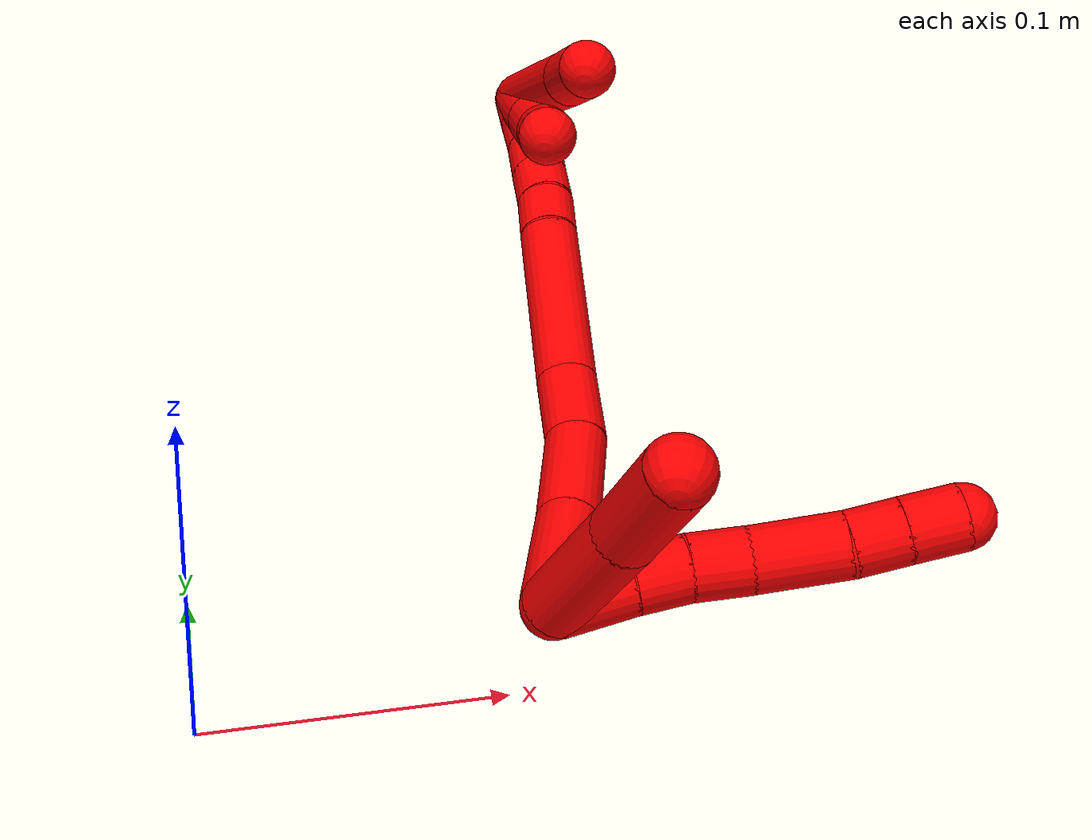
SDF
<sdf version="1.7">
 <world name="default">
  <model name="2">
   <static>0</static>
   <link name="2">
    <collision name="collision-cylinder-e_1_2_8">
     <pose>0.005618 -0.012443 0.004761 1.20536 0.399059 0.276511</pose>
     <geometry><cylinder><radius>0.0125</radius><length>0.028917</length></cylinder></geometry>
     <surface>
      <friction><ode><mu>1.16</mu><mu2>1.16</mu2><slip1>0</slip1><slip2>0</slip2></ode></friction>
      <contact><ode><kp>1e+06</kp><kd>1</kd><max_vel>0</max_vel><min_depth>0.001</min_depth></ode></contact>
     </surface>
    </collision>
    <visual name="visual-cylinder-e_1_2_8">
     <pose>0.005618 -0.012443 0.004761 1.20536 0.399059 0.276511</pose>
     <geometry><cylinder><radius>0.0125</radius><length>0.028917</length></cylinder></geometry>
     <material><ambient>1 0 0 1</ambient></material>
    </visual>
    <collision name="collision-cylinder-e_2_8_9">
     <pose>0.015943 -0.033333 0.012836 1.19691 0.478528 0.329649</pose>
     <geometry><cylinder><radius>0.0125</radius><length>0.020445</length></cylinder></geometry>
     <surface>
      <friction><ode><mu>1.16</mu><mu2>1.16</mu2><slip1>0</slip1><slip2>0</slip2></ode></friction>
      <contact><ode><kp>1e+06</kp><kd>1</kd><max_vel>0</max_vel><min_depth>0.001</min_depth></ode></contact>
     </surface>
    </collision>
    <visual name="visual-cylinder-e_2_8_9">
     <pose>0.015943 -0.033333 0.012836 1.19691 0.478528 0.329649</pose>
     <geometry><cylinder><radius>0.0125</radius><length>0.020445</length></cylinder></geometry>
     <material><ambient>1 0 0 1</ambient></material>
    </visual>
    <collision name="collision-cylinder-e_3_9_10">
     <pose>0.026694 -0.051133 0.018937 1.2812 0.554517 0.41811</pose>
     <geometry><cylinder><radius>0.0125</radius><length>0.022956</length></cylinder></geometry>
     <surface>
      <friction><ode><mu>1.16</mu><mu2>1.16</mu2><slip1>0</slip1><slip2>0</slip2></ode></friction>
      <contact><ode><kp>1e+06</kp><kd>1</kd><max_vel>0</max_vel><min_depth>0.001</min_depth></ode></contact>
     </surface>
    </collision>
    <visual name="visual-cylinder-e_3_9_10">
     <pose>0.026694 -0.051133 0.018937 1.2812 0.554517 0.41811</pose>
     <geometry><cylinder><radius>0.0125</radius><length>0.022956</length></cylinder></geometry>
     <material><ambient>1 0 0 1</ambient></material>
    </visual>
    <collision name="collision-cylinder-e_4_10_11">
     <pose>0.039818 -0.076745 0.024153 1.42248 0.406664 0.351657</pose>
     <geometry><cylinder><radius>0.0125</radius><length>0.035803</length></cylinder></geometry>
     <surface>
      <friction><ode><mu>1.16</mu><mu2>1.16</mu2><slip1>0</slip1><slip2>0</slip2></ode></friction>
      <contact><ode><kp>1e+06</kp><kd>1</kd><max_vel>0</max_vel><min_depth>0.001</min_depth></ode></contact>
     </surface>
    </collision>
    <visual name="visual-cylinder-e_4_10_11">
     <pose>0.039818 -0.076745 0.024153 1.42248 0.406664 0.351657</pose>
     <geometry><cylinder><radius>0.0125</radius><length>0.035803</length></cylinder></geometry>
     <material><ambient>1 0 0 1</ambient></material>
    </visual>
    <collision name="collision-cylinder-e_5_11_12">
     <pose>0.050706 -0.102026 0.029084 1.3003 0.386291 0.295294</pose>
     <geometry><cylinder><radius>0.0125</radius><length>0.020208</length></cylinder></geometry>
     <surface>
      <friction><ode><mu>1.16</mu><mu2>1.16</mu2><slip1>0</slip1><slip2>0</slip2></ode></friction>
      <contact><ode><kp>1e+06</kp><kd>1</kd><max_vel>0</max_vel><min_depth>0.001</min_depth></ode></contact>
     </surface>
    </collision>
    <visual name="visual-cylinder-e_5_11_12">
     <pose>0.050706 -0.102026 0.029084 1.3003 0.386291 0.295294</pose>
     <geometry><cylinder><radius>0.0125</radius><length>0.020208</length></cylinder></geometry>
     <material><ambient>1 0 0 1</ambient></material>
    </visual>
    <collision name="collision-cylinder-e_6_12_6">
     <pose>0.058714 -0.120684 0.034199 1.30598 0.398185 0.306256</pose>
     <geometry><cylinder><radius>0.0125</radius><length>0.02167</length></cylinder></geometry>
     <surface>
      <friction><ode><mu>1.16</mu><mu2>1.16</mu2><slip1>0</slip1><slip2>0</slip2></ode></friction>
      <contact><ode><kp>1e+06</kp><kd>1</kd><max_vel>0</max_vel><min_depth>0.001</min_depth></ode></contact>
     </surface>
    </collision>
    <visual name="visual-cylinder-e_6_12_6">
     <pose>0.058714 -0.120684 0.034199 1.30598 0.398185 0.306256</pose>
     <geometry><cylinder><radius>0.0125</radius><length>0.02167</length></cylinder></geometry>
     <material><ambient>1 0 0 1</ambient></material>
    </visual>
    <collision name="collision-cylinder-e_1_2_13">
     <pose>-0.013624 -0.023746 -0.005484 1.79776 -0.509756 -0.633113</pose>
     <geometry><cylinder><radius>0.0125</radius><length>0.055841</length></cylinder></geometry>
     <surface>
      <friction><ode><mu>1.16</mu><mu2>1.16</mu2><slip1>0</slip1><slip2>0</slip2></ode></friction>
      <contact><ode><kp>1e+06</kp><kd>1</kd><max_vel>0</max_vel><min_depth>0.001</min_depth></ode></contact>
     </surface>
    </collision>
    <visual name="visual-cylinder-e_1_2_13">
     <pose>-0.013624 -0.023746 -0.005484 1.79776 -0.509756 -0.633113</pose>
     <geometry><cylinder><radius>0.0125</radius><length>0.055841</length></cylinder></geometry>
     <material><ambient>1 0 0 1</ambient></material>
    </visual>
    <collision name="collision-cylinder-e_2_13_5">
     <pose>-0.038995 -0.065307 -0.016635 1.8788 -0.560992 -0.750592</pose>
     <geometry><cylinder><radius>0.0125</radius><length>0.044159</length></cylinder></geometry>
     <surface>
      <friction><ode><mu>1.16</mu><mu2>1.16</mu2><slip1>0</slip1><slip2>0</slip2></ode></friction>
      <contact><ode><kp>1e+06</kp><kd>1</kd><max_vel>0</max_vel><min_depth>0.001</min_depth></ode></contact>
     </surface>
    </collision>
    <visual name="visual-cylinder-e_2_13_5">
     <pose>-0.038995 -0.065307 -0.016635 1.8788 -0.560992 -0.750592</pose>
     <geometry><cylinder><radius>0.0125</radius><length>0.044159</length></cylinder></geometry>
     <material><ambient>1 0 0 1</ambient></material>
    </visual>
    <collision name="collision-cylinder-e_1_2_14">
     <pose>0.002379 0.001186 0.023227 -0.051035 0.101926 -0.002604</pose>
     <geometry><cylinder><radius>0.0125</radius><length>0.046757</length></cylinder></geometry>
     <surface>
      <friction><ode><mu>1.16</mu><mu2>1.16</mu2><slip1>0</slip1><slip2>0</slip2></ode></friction>
      <contact><ode><kp>1e+06</kp><kd>1</kd><max_vel>0</max_vel><min_depth>0.001</min_depth></ode></contact>
     </surface>
    </collision>
    <visual name="visual-cylinder-e_1_2_14">
     <pose>0.002379 0.001186 0.023227 -0.051035 0.101926 -0.002604</pose>
     <geometry><cylinder><radius>0.0125</radius><length>0.046757</length></cylinder></geometry>
     <material><ambient>1 0 0 1</ambient></material>
    </visual>
    <collision name="collision-cylinder-e_2_14_15">
     <pose>0.004309 0.002625 0.068953 -0.011222 -0.019916 0.000112</pose>
     <geometry><cylinder><radius>0.0125</radius><length>0.045011</length></cylinder></geometry>
     <surface>
      <friction><ode><mu>1.16</mu><mu2>1.16</mu2><slip1>0</slip1><slip2>0</slip2></ode></friction>
      <contact><ode><kp>1e+06</kp><kd>1</kd><max_vel>0</max_vel><min_depth>0.001</min_depth></ode></contact>
     </surface>
    </collision>
    <visual name="visual-cylinder-e_2_14_15">
     <pose>0.004309 0.002625 0.068953 -0.011222 -0.019916 0.000112</pose>
     <geometry><cylinder><radius>0.0125</radius><length>0.045011</length></cylinder></geometry>
     <material><ambient>1 0 0 1</ambient></material>
    </visual>
    <collision name="collision-cylinder-e_3_15_16">
     <pose>-0.000485 0.003886 0.106472 -0.067004 -0.281088 0.009483</pose>
     <geometry><cylinder><radius>0.0125</radius><length>0.031336</length></cylinder></geometry>
     <surface>
      <friction><ode><mu>1.16</mu><mu2>1.16</mu2><slip1>0</slip1><slip2>0</slip2></ode></friction>
      <contact><ode><kp>1e+06</kp><kd>1</kd><max_vel>0</max_vel><min_depth>0.001</min_depth></ode></contact>
     </surface>
    </collision>
    <visual name="visual-cylinder-e_3_15_16">
     <pose>-0.000485 0.003886 0.106472 -0.067004 -0.281088 0.009483</pose>
     <geometry><cylinder><radius>0.0125</radius><length>0.031336</length></cylinder></geometry>
     <material><ambient>1 0 0 1</ambient></material>
    </visual>
    <collision name="collision-cylinder-e_4_16_17">
     <pose>-0.018543 0.004515 0.15732 0.010578 -0.365491 -0.001955</pose>
     <geometry><cylinder><radius>0.0125</radius><length>0.076729</length></cylinder></geometry>
     <surface>
      <friction><ode><mu>1.16</mu><mu2>1.16</mu2><slip1>0</slip1><slip2>0</slip2></ode></friction>
      <contact><ode><kp>1e+06</kp><kd>1</kd><max_vel>0</max_vel><min_depth>0.001</min_depth></ode></contact>
     </surface>
    </collision>
    <visual name="visual-cylinder-e_4_16_17">
     <pose>-0.018543 0.004515 0.15732 0.010578 -0.365491 -0.001955</pose>
     <geometry><cylinder><radius>0.0125</radius><length>0.076729</length></cylinder></geometry>
     <material><ambient>1 0 0 1</ambient></material>
    </visual>
    <collision name="collision-cylinder-e_5_17_18">
     <pose>-0.03489 0.004451 0.202798 -0.032688 -0.266425 0.004381</pose>
     <geometry><cylinder><radius>0.0125</radius><length>0.020015</length></cylinder></geometry>
     <surface>
      <friction><ode><mu>1.16</mu><mu2>1.16</mu2><slip1>0</slip1><slip2>0</slip2></ode></friction>
      <contact><ode><kp>1e+06</kp><kd>1</kd><max_vel>0</max_vel><min_depth>0.001</min_depth></ode></contact>
     </surface>
    </collision>
    <visual name="visual-cylinder-e_5_17_18">
     <pose>-0.03489 0.004451 0.202798 -0.032688 -0.266425 0.004381</pose>
     <geometry><cylinder><radius>0.0125</radius><length>0.020015</length></cylinder></geometry>
     <material><ambient>1 0 0 1</ambient></material>
    </visual>
    <collision name="collision-cylinder-e_6_18_19">
     <pose>-0.039677 0.006165 0.222181 -0.142645 -0.215445 0.015452</pose>
     <geometry><cylinder><radius>0.0125</radius><length>0.020132</length></cylinder></geometry>
     <surface>
      <friction><ode><mu>1.16</mu><mu2>1.16</mu2><slip1>0</slip1><slip2>0</slip2></ode></friction>
      <contact><ode><kp>1e+06</kp><kd>1</kd><max_vel>0</max_vel><min_depth>0.001</min_depth></ode></contact>
     </surface>
    </collision>
    <visual name="visual-cylinder-e_6_18_19">
     <pose>-0.039677 0.006165 0.222181 -0.142645 -0.215445 0.015452</pose>
     <geometry><cylinder><radius>0.0125</radius><length>0.020132</length></cylinder></geometry>
     <material><ambient>1 0 0 1</ambient></material>
    </visual>
    <collision name="collision-cylinder-e_7_19_20">
     <pose>-0.04418 0.008644 0.241574 -0.111495 -0.237392 0.01331</pose>
     <geometry><cylinder><radius>0.0125</radius><length>0.02</length></cylinder></geometry>
     <surface>
      <friction><ode><mu>1.16</mu><mu2>1.16</mu2><slip1>0</slip1><slip2>0</slip2></ode></friction>
      <contact><ode><kp>1e+06</kp><kd>1</kd><max_vel>0</max_vel><min_depth>0.001</min_depth></ode></contact>
     </surface>
    </collision>
    <visual name="visual-cylinder-e_7_19_20">
     <pose>-0.04418 0.008644 0.241574 -0.111495 -0.237392 0.01331</pose>
     <geometry><cylinder><radius>0.0125</radius><length>0.02</length></cylinder></geometry>
     <material><ambient>1 0 0 1</ambient></material>
    </visual>
    <collision name="collision-cylinder-e_8_20_21">
     <pose>-0.048891 0.011484 0.260793 -0.181921 -0.238079 0.021818</pose>
     <geometry><cylinder><radius>0.0125</radius><length>0.020005</length></cylinder></geometry>
     <surface>
      <friction><ode><mu>1.16</mu><mu2>1.16</mu2><slip1>0</slip1><slip2>0</slip2></ode></friction>
      <contact><ode><kp>1e+06</kp><kd>1</kd><max_vel>0</max_vel><min_depth>0.001</min_depth></ode></contact>
     </surface>
    </collision>
    <visual name="visual-cylinder-e_8_20_21">
     <pose>-0.048891 0.011484 0.260793 -0.181921 -0.238079 0.021818</pose>
     <geometry><cylinder><radius>0.0125</radius><length>0.020005</length></cylinder></geometry>
     <material><ambient>1 0 0 1</ambient></material>
    </visual>
    <collision name="collision-cylinder-e_9_21_1">
     <pose>-0.053537 0.014939 0.279947 -0.175062 -0.230553 0.020322</pose>
     <geometry><cylinder><radius>0.0125</radius><length>0.020014</length></cylinder></geometry>
     <surface>
      <friction><ode><mu>1.16</mu><mu2>1.16</mu2><slip1>0</slip1><slip2>0</slip2></ode></friction>
      <contact><ode><kp>1e+06</kp><kd>1</kd><max_vel>0</max_vel><min_depth>0.001</min_depth></ode></contact>
     </surface>
    </collision>
    <visual name="visual-cylinder-e_9_21_1">
     <pose>-0.053537 0.014939 0.279947 -0.175062 -0.230553 0.020322</pose>
     <geometry><cylinder><radius>0.0125</radius><length>0.020014</length></cylinder></geometry>
     <material><ambient>1 0 0 1</ambient></material>
    </visual>
    <collision name="collision-cylinder-e_1_1_22">
     <pose>-0.065806 -0.007548 0.262145 2.41836 -0.266676 -0.681563</pose>
     <geometry><cylinder><radius>0.0125</radius><length>0.075762</length></cylinder></geometry>
     <surface>
      <friction><ode><mu>1.16</mu><mu2>1.16</mu2><slip1>0</slip1><slip2>0</slip2></ode></friction>
      <contact><ode><kp>1e+06</kp><kd>1</kd><max_vel>0</max_vel><min_depth>0.001</min_depth></ode></contact>
     </surface>
    </collision>
    <visual name="visual-cylinder-e_1_1_22">
     <pose>-0.065806 -0.007548 0.262145 2.41836 -0.266676 -0.681563</pose>
     <geometry><cylinder><radius>0.0125</radius><length>0.075762</length></cylinder></geometry>
     <material><ambient>1 0 0 1</ambient></material>
    </visual>
    <collision name="collision-cylinder-e_2_22_4">
     <pose>-0.079318 -0.039253 0.225928 2.43564 -0.295456 -0.767785</pose>
     <geometry><cylinder><radius>0.0125</radius><length>0.024238</length></cylinder></geometry>
     <surface>
      <friction><ode><mu>1.16</mu><mu2>1.16</mu2><slip1>0</slip1><slip2>0</slip2></ode></friction>
      <contact><ode><kp>1e+06</kp><kd>1</kd><max_vel>0</max_vel><min_depth>0.001</min_depth></ode></contact>
     </surface>
    </collision>
    <visual name="visual-cylinder-e_2_22_4">
     <pose>-0.079318 -0.039253 0.225928 2.43564 -0.295456 -0.767785</pose>
     <geometry><cylinder><radius>0.0125</radius><length>0.024238</length></cylinder></geometry>
     <material><ambient>1 0 0 1</ambient></material>
    </visual>
    <collision name="collision-cylinder-e_1_1_23">
     <pose>-0.056747 0.009674 0.272569 2.7523 -0.05031 -0.253874</pose>
     <geometry><cylinder><radius>0.0125</radius><length>0.036734</length></cylinder></geometry>
     <surface>
      <friction><ode><mu>1.16</mu><mu2>1.16</mu2><slip1>0</slip1><slip2>0</slip2></ode></friction>
      <contact><ode><kp>1e+06</kp><kd>1</kd><max_vel>0</max_vel><min_depth>0.001</min_depth></ode></contact>
     </surface>
    </collision>
    <visual name="visual-cylinder-e_1_1_23">
     <pose>-0.056747 0.009674 0.272569 2.7523 -0.05031 -0.253874</pose>
     <geometry><cylinder><radius>0.0125</radius><length>0.036734</length></cylinder></geometry>
     <material><ambient>1 0 0 1</ambient></material>
    </visual>
    <collision name="collision-cylinder-e_2_23_24">
     <pose>-0.058739 -0.002176 0.244076 2.74038 -0.085155 -0.413062</pose>
     <geometry><cylinder><radius>0.0125</radius><length>0.025122</length></cylinder></geometry>
     <surface>
      <friction><ode><mu>1.16</mu><mu2>1.16</mu2><slip1>0</slip1><slip2>0</slip2></ode></friction>
      <contact><ode><kp>1e+06</kp><kd>1</kd><max_vel>0</max_vel><min_depth>0.001</min_depth></ode></contact>
     </surface>
    </collision>
    <visual name="visual-cylinder-e_2_23_24">
     <pose>-0.058739 -0.002176 0.244076 2.74038 -0.085155 -0.413062</pose>
     <geometry><cylinder><radius>0.0125</radius><length>0.025122</length></cylinder></geometry>
     <material><ambient>1 0 0 1</ambient></material>
    </visual>
    <collision name="collision-cylinder-e_3_24_3">
     <pose>-0.065877 -0.014135 0.215914 2.73973 -0.323893 -1.35207</pose>
     <geometry><cylinder><radius>0.0125</radius><length>0.038144</length></cylinder></geometry>
     <surface>
      <friction><ode><mu>1.16</mu><mu2>1.16</mu2><slip1>0</slip1><slip2>0</slip2></ode></friction>
      <contact><ode><kp>1e+06</kp><kd>1</kd><max_vel>0</max_vel><min_depth>0.001</min_depth></ode></contact>
     </surface>
    </collision>
    <visual name="visual-cylinder-e_3_24_3">
     <pose>-0.065877 -0.014135 0.215914 2.73973 -0.323893 -1.35207</pose>
     <geometry><cylinder><radius>0.0125</radius><length>0.038144</length></cylinder></geometry>
     <material><ambient>1 0 0 1</ambient></material>
    </visual>
    <collision name="collision-sphere-3">
     <pose>-0.071947 -0.021207 0.199274 0 -0 0</pose>
     <geometry><sphere><radius>0.0125</radius></sphere></geometry>
     <surface>
      <friction><ode><mu>1.16</mu><mu2>1.16</mu2><slip1>0</slip1><slip2>0</slip2></ode></friction>
      <contact><ode><kp>1e+06</kp><kd>1</kd><max_vel>0</max_vel><min_depth>0.001</min_depth></ode></contact>
     </surface>
    </collision>
    <visual name="visual-sphere-3">
     <pose>-0.071947 -0.021207 0.199274 0 -0 0</pose>
     <geometry><sphere><radius>0.0125</radius></sphere></geometry>
     <material><ambient>1 0 0 1</ambient></material>
    </visual>
    <collision name="collision-sphere-24">
     <pose>-0.059808 -0.007064 0.232554 0 -0 0</pose>
     <geometry><sphere><radius>0.0125</radius></sphere></geometry>
     <surface>
      <friction><ode><mu>1.16</mu><mu2>1.16</mu2><slip1>0</slip1><slip2>0</slip2></ode></friction>
      <contact><ode><kp>1e+06</kp><kd>1</kd><max_vel>0</max_vel><min_depth>0.001</min_depth></ode></contact>
     </surface>
    </collision>
    <visual name="visual-sphere-24">
     <pose>-0.059808 -0.007064 0.232554 0 -0 0</pose>
     <geometry><sphere><radius>0.0125</radius></sphere></geometry>
     <material><ambient>1 0 0 1</ambient></material>
    </visual>
    <collision name="collision-sphere-23">
     <pose>-0.057671 0.002712 0.255598 0 -0 0</pose>
     <geometry><sphere><radius>0.0125</radius></sphere></geometry>
     <surface>
      <friction><ode><mu>1.16</mu><mu2>1.16</mu2><slip1>0</slip1><slip2>0</slip2></ode></friction>
      <contact><ode><kp>1e+06</kp><kd>1</kd><max_vel>0</max_vel><min_depth>0.001</min_depth></ode></contact>
     </surface>
    </collision>
    <visual name="visual-sphere-23">
     <pose>-0.057671 0.002712 0.255598 0 -0 0</pose>
     <geometry><sphere><radius>0.0125</radius></sphere></geometry>
     <material><ambient>1 0 0 1</ambient></material>
    </visual>
    <collision name="collision-sphere-4">
     <pose>-0.082846 -0.046775 0.217105 0 -0 0</pose>
     <geometry><sphere><radius>0.0125</radius></sphere></geometry>
     <surface>
      <friction><ode><mu>1.16</mu><mu2>1.16</mu2><slip1>0</slip1><slip2>0</slip2></ode></friction>
      <contact><ode><kp>1e+06</kp><kd>1</kd><max_vel>0</max_vel><min_depth>0.001</min_depth></ode></contact>
     </surface>
    </collision>
    <visual name="visual-sphere-4">
     <pose>-0.082846 -0.046775 0.217105 0 -0 0</pose>
     <geometry><sphere><radius>0.0125</radius></sphere></geometry>
     <material><ambient>1 0 0 1</ambient></material>
    </visual>
    <collision name="collision-sphere-22">
     <pose>-0.075789 -0.031732 0.234751 0 -0 0</pose>
     <geometry><sphere><radius>0.0125</radius></sphere></geometry>
     <surface>
      <friction><ode><mu>1.16</mu><mu2>1.16</mu2><slip1>0</slip1><slip2>0</slip2></ode></friction>
      <contact><ode><kp>1e+06</kp><kd>1</kd><max_vel>0</max_vel><min_depth>0.001</min_depth></ode></contact>
     </surface>
    </collision>
    <visual name="visual-sphere-22">
     <pose>-0.075789 -0.031732 0.234751 0 -0 0</pose>
     <geometry><sphere><radius>0.0125</radius></sphere></geometry>
     <material><ambient>1 0 0 1</ambient></material>
    </visual>
    <collision name="collision-sphere-1">
     <pose>-0.055824 0.016636 0.28954 0 -0 0</pose>
     <geometry><sphere><radius>0.0125</radius></sphere></geometry>
     <surface>
      <friction><ode><mu>1.16</mu><mu2>1.16</mu2><slip1>0</slip1><slip2>0</slip2></ode></friction>
      <contact><ode><kp>1e+06</kp><kd>1</kd><max_vel>0</max_vel><min_depth>0.001</min_depth></ode></contact>
     </surface>
    </collision>
    <visual name="visual-sphere-1">
     <pose>-0.055824 0.016636 0.28954 0 -0 0</pose>
     <geometry><sphere><radius>0.0125</radius></sphere></geometry>
     <material><ambient>1 0 0 1</ambient></material>
    </visual>
    <collision name="collision-sphere-21">
     <pose>-0.05125 0.013243 0.270353 0 -0 0</pose>
     <geometry><sphere><radius>0.0125</radius></sphere></geometry>
     <surface>
      <friction><ode><mu>1.16</mu><mu2>1.16</mu2><slip1>0</slip1><slip2>0</slip2></ode></friction>
      <contact><ode><kp>1e+06</kp><kd>1</kd><max_vel>0</max_vel><min_depth>0.001</min_depth></ode></contact>
     </surface>
    </collision>
    <visual name="visual-sphere-21">
     <pose>-0.05125 0.013243 0.270353 0 -0 0</pose>
     <geometry><sphere><radius>0.0125</radius></sphere></geometry>
     <material><ambient>1 0 0 1</ambient></material>
    </visual>
    <collision name="collision-sphere-12">
     <pose>0.054513 -0.111045 0.031585 0 -0 0</pose>
     <geometry><sphere><radius>0.0125</radius></sphere></geometry>
     <surface>
      <friction><ode><mu>1.16</mu><mu2>1.16</mu2><slip1>0</slip1><slip2>0</slip2></ode></friction>
      <contact><ode><kp>1e+06</kp><kd>1</kd><max_vel>0</max_vel><min_depth>0.001</min_depth></ode></contact>
     </surface>
    </collision>
    <visual name="visual-sphere-12">
     <pose>0.054513 -0.111045 0.031585 0 -0 0</pose>
     <geometry><sphere><radius>0.0125</radius></sphere></geometry>
     <material><ambient>1 0 0 1</ambient></material>
    </visual>
    <collision name="collision-sphere-11">
     <pose>0.046899 -0.093007 0.026583 0 -0 0</pose>
     <geometry><sphere><radius>0.0125</radius></sphere></geometry>
     <surface>
      <friction><ode><mu>1.16</mu><mu2>1.16</mu2><slip1>0</slip1><slip2>0</slip2></ode></friction>
      <contact><ode><kp>1e+06</kp><kd>1</kd><max_vel>0</max_vel><min_depth>0.001</min_depth></ode></contact>
     </surface>
    </collision>
    <visual name="visual-sphere-11">
     <pose>0.046899 -0.093007 0.026583 0 -0 0</pose>
     <geometry><sphere><radius>0.0125</radius></sphere></geometry>
     <material><ambient>1 0 0 1</ambient></material>
    </visual>
    <collision name="collision-sphere-10">
     <pose>0.032738 -0.060484 0.021724 0 -0 0</pose>
     <geometry><sphere><radius>0.0125</radius></sphere></geometry>
     <surface>
      <friction><ode><mu>1.16</mu><mu2>1.16</mu2><slip1>0</slip1><slip2>0</slip2></ode></friction>
      <contact><ode><kp>1e+06</kp><kd>1</kd><max_vel>0</max_vel><min_depth>0.001</min_depth></ode></contact>
     </surface>
    </collision>
    <visual name="visual-sphere-10">
     <pose>0.032738 -0.060484 0.021724 0 -0 0</pose>
     <geometry><sphere><radius>0.0125</radius></sphere></geometry>
     <material><ambient>1 0 0 1</ambient></material>
    </visual>
    <collision name="collision-sphere-9">
     <pose>0.02065 -0.041781 0.01615 0 -0 0</pose>
     <geometry><sphere><radius>0.0125</radius></sphere></geometry>
     <surface>
      <friction><ode><mu>1.16</mu><mu2>1.16</mu2><slip1>0</slip1><slip2>0</slip2></ode></friction>
      <contact><ode><kp>1e+06</kp><kd>1</kd><max_vel>0</max_vel><min_depth>0.001</min_depth></ode></contact>
     </surface>
    </collision>
    <visual name="visual-sphere-9">
     <pose>0.02065 -0.041781 0.01615 0 -0 0</pose>
     <geometry><sphere><radius>0.0125</radius></sphere></geometry>
     <material><ambient>1 0 0 1</ambient></material>
    </visual>
    <collision name="collision-sphere-2">
     <geometry><sphere><radius>0.0125</radius></sphere></geometry>
     <surface>
      <friction><ode><mu>1.16</mu><mu2>1.16</mu2><slip1>0</slip1><slip2>0</slip2></ode></friction>
      <contact><ode><kp>1e+06</kp><kd>1</kd><max_vel>0</max_vel><min_depth>0.001</min_depth></ode></contact>
     </surface>
    </collision>
    <visual name="visual-sphere-2">
     <geometry><sphere><radius>0.0125</radius></sphere></geometry>
     <material><ambient>1 0 0 1</ambient></material>
    </visual>
    <collision name="collision-sphere-19">
     <pose>-0.041829 0.007562 0.231914 0 -0 0</pose>
     <geometry><sphere><radius>0.0125</radius></sphere></geometry>
     <surface>
      <friction><ode><mu>1.16</mu><mu2>1.16</mu2><slip1>0</slip1><slip2>0</slip2></ode></friction>
      <contact><ode><kp>1e+06</kp><kd>1</kd><max_vel>0</max_vel><min_depth>0.001</min_depth></ode></contact>
     </surface>
    </collision>
    <visual name="visual-sphere-19">
     <pose>-0.041829 0.007562 0.231914 0 -0 0</pose>
     <geometry><sphere><radius>0.0125</radius></sphere></geometry>
     <material><ambient>1 0 0 1</ambient></material>
    </visual>
    <collision name="collision-sphere-8">
     <pose>0.011236 -0.024886 0.009522 0 -0 0</pose>
     <geometry><sphere><radius>0.0125</radius></sphere></geometry>
     <surface>
      <friction><ode><mu>1.16</mu><mu2>1.16</mu2><slip1>0</slip1><slip2>0</slip2></ode></friction>
      <contact><ode><kp>1e+06</kp><kd>1</kd><max_vel>0</max_vel><min_depth>0.001</min_depth></ode></contact>
     </surface>
    </collision>
    <visual name="visual-sphere-8">
     <pose>0.011236 -0.024886 0.009522 0 -0 0</pose>
     <geometry><sphere><radius>0.0125</radius></sphere></geometry>
     <material><ambient>1 0 0 1</ambient></material>
    </visual>
    <collision name="collision-sphere-6">
     <pose>0.062915 -0.130323 0.036813 0 -0 0</pose>
     <geometry><sphere><radius>0.0125</radius></sphere></geometry>
     <surface>
      <friction><ode><mu>1.16</mu><mu2>1.16</mu2><slip1>0</slip1><slip2>0</slip2></ode></friction>
      <contact><ode><kp>1e+06</kp><kd>1</kd><max_vel>0</max_vel><min_depth>0.001</min_depth></ode></contact>
     </surface>
    </collision>
    <visual name="visual-sphere-6">
     <pose>0.062915 -0.130323 0.036813 0 -0 0</pose>
     <geometry><sphere><radius>0.0125</radius></sphere></geometry>
     <material><ambient>1 0 0 1</ambient></material>
    </visual>
    <collision name="collision-sphere-13">
     <pose>-0.027249 -0.047492 -0.010968 0 -0 0</pose>
     <geometry><sphere><radius>0.0125</radius></sphere></geometry>
     <surface>
      <friction><ode><mu>1.16</mu><mu2>1.16</mu2><slip1>0</slip1><slip2>0</slip2></ode></friction>
      <contact><ode><kp>1e+06</kp><kd>1</kd><max_vel>0</max_vel><min_depth>0.001</min_depth></ode></contact>
     </surface>
    </collision>
    <visual name="visual-sphere-13">
     <pose>-0.027249 -0.047492 -0.010968 0 -0 0</pose>
     <geometry><sphere><radius>0.0125</radius></sphere></geometry>
     <material><ambient>1 0 0 1</ambient></material>
    </visual>
    <collision name="collision-sphere-5">
     <pose>-0.050742 -0.083123 -0.022303 0 -0 0</pose>
     <geometry><sphere><radius>0.0125</radius></sphere></geometry>
     <surface>
      <friction><ode><mu>1.16</mu><mu2>1.16</mu2><slip1>0</slip1><slip2>0</slip2></ode></friction>
      <contact><ode><kp>1e+06</kp><kd>1</kd><max_vel>0</max_vel><min_depth>0.001</min_depth></ode></contact>
     </surface>
    </collision>
    <visual name="visual-sphere-5">
     <pose>-0.050742 -0.083123 -0.022303 0 -0 0</pose>
     <geometry><sphere><radius>0.0125</radius></sphere></geometry>
     <material><ambient>1 0 0 1</ambient></material>
    </visual>
    <collision name="collision-sphere-14">
     <pose>0.004757 0.002373 0.046454 0 -0 0</pose>
     <geometry><sphere><radius>0.0125</radius></sphere></geometry>
     <surface>
      <friction><ode><mu>1.16</mu><mu2>1.16</mu2><slip1>0</slip1><slip2>0</slip2></ode></friction>
      <contact><ode><kp>1e+06</kp><kd>1</kd><max_vel>0</max_vel><min_depth>0.001</min_depth></ode></contact>
     </surface>
    </collision>
    <visual name="visual-sphere-14">
     <pose>0.004757 0.002373 0.046454 0 -0 0</pose>
     <geometry><sphere><radius>0.0125</radius></sphere></geometry>
     <material><ambient>1 0 0 1</ambient></material>
    </visual>
    <collision name="collision-sphere-15">
     <pose>0.003861 0.002878 0.091453 0 -0 0</pose>
     <geometry><sphere><radius>0.0125</radius></sphere></geometry>
     <surface>
      <friction><ode><mu>1.16</mu><mu2>1.16</mu2><slip1>0</slip1><slip2>0</slip2></ode></friction>
      <contact><ode><kp>1e+06</kp><kd>1</kd><max_vel>0</max_vel><min_depth>0.001</min_depth></ode></contact>
     </surface>
    </collision>
    <visual name="visual-sphere-15">
     <pose>0.003861 0.002878 0.091453 0 -0 0</pose>
     <geometry><sphere><radius>0.0125</radius></sphere></geometry>
     <material><ambient>1 0 0 1</ambient></material>
    </visual>
    <collision name="collision-sphere-16">
     <pose>-0.004832 0.004894 0.121492 0 -0 0</pose>
     <geometry><sphere><radius>0.0125</radius></sphere></geometry>
     <surface>
      <friction><ode><mu>1.16</mu><mu2>1.16</mu2><slip1>0</slip1><slip2>0</slip2></ode></friction>
      <contact><ode><kp>1e+06</kp><kd>1</kd><max_vel>0</max_vel><min_depth>0.001</min_depth></ode></contact>
     </surface>
    </collision>
    <visual name="visual-sphere-16">
     <pose>-0.004832 0.004894 0.121492 0 -0 0</pose>
     <geometry><sphere><radius>0.0125</radius></sphere></geometry>
     <material><ambient>1 0 0 1</ambient></material>
    </visual>
    <collision name="collision-sphere-17">
     <pose>-0.032255 0.004136 0.193149 0 -0 0</pose>
     <geometry><sphere><radius>0.0125</radius></sphere></geometry>
     <surface>
      <friction><ode><mu>1.16</mu><mu2>1.16</mu2><slip1>0</slip1><slip2>0</slip2></ode></friction>
      <contact><ode><kp>1e+06</kp><kd>1</kd><max_vel>0</max_vel><min_depth>0.001</min_depth></ode></contact>
     </surface>
    </collision>
    <visual name="visual-sphere-17">
     <pose>-0.032255 0.004136 0.193149 0 -0 0</pose>
     <geometry><sphere><radius>0.0125</radius></sphere></geometry>
     <material><ambient>1 0 0 1</ambient></material>
    </visual>
    <collision name="collision-sphere-18">
     <pose>-0.037525 0.004767 0.212448 0 -0 0</pose>
     <geometry><sphere><radius>0.0125</radius></sphere></geometry>
     <surface>
      <friction><ode><mu>1.16</mu><mu2>1.16</mu2><slip1>0</slip1><slip2>0</slip2></ode></friction>
      <contact><ode><kp>1e+06</kp><kd>1</kd><max_vel>0</max_vel><min_depth>0.001</min_depth></ode></contact>
     </surface>
    </collision>
    <visual name="visual-sphere-18">
     <pose>-0.037525 0.004767 0.212448 0 -0 0</pose>
     <geometry><sphere><radius>0.0125</radius></sphere></geometry>
     <material><ambient>1 0 0 1</ambient></material>
    </visual>
    <collision name="collision-sphere-20">
     <pose>-0.046532 0.009725 0.251233 0 -0 0</pose>
     <geometry><sphere><radius>0.0125</radius></sphere></geometry>
     <surface>
      <friction><ode><mu>1.16</mu><mu2>1.16</mu2><slip1>0</slip1><slip2>0</slip2></ode></friction>
      <contact><ode><kp>1e+06</kp><kd>1</kd><max_vel>0</max_vel><min_depth>0.001</min_depth></ode></contact>
     </surface>
    </collision>
    <visual name="visual-sphere-20">
     <pose>-0.046532 0.009725 0.251233 0 -0 0</pose>
     <geometry><sphere><radius>0.0125</radius></sphere></geometry>
     <material><ambient>1 0 0 1</ambient></material>
    </visual>
    <inertial>
     <pose>-0.021604 -0.01874 0.127313 0 -0 0</pose>
     <mass>0.75</mass>
     <inertia>
      <ixx>8.9e-05</ixx>
      <ixy>0</ixy>
      <ixz>0</ixz>
      <iyy>-1.3e-05</iyy>
      <iyz>0</iyz>
      <izz>0.000112</izz>
     </inertia>
    </inertial>
   </link>
   <pose>0.125154 0.039847 0.011479 -0.86651 0.899477 0.230845</pose>
  </model>
 </world>
</sdf>
